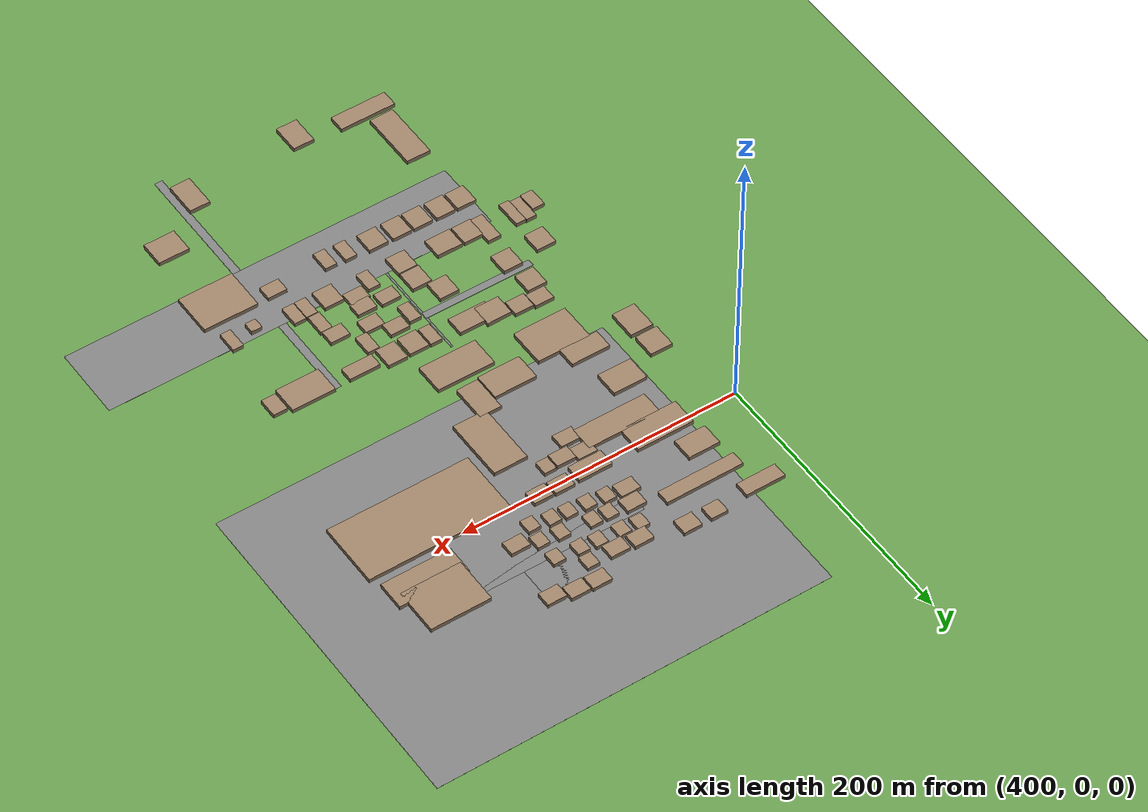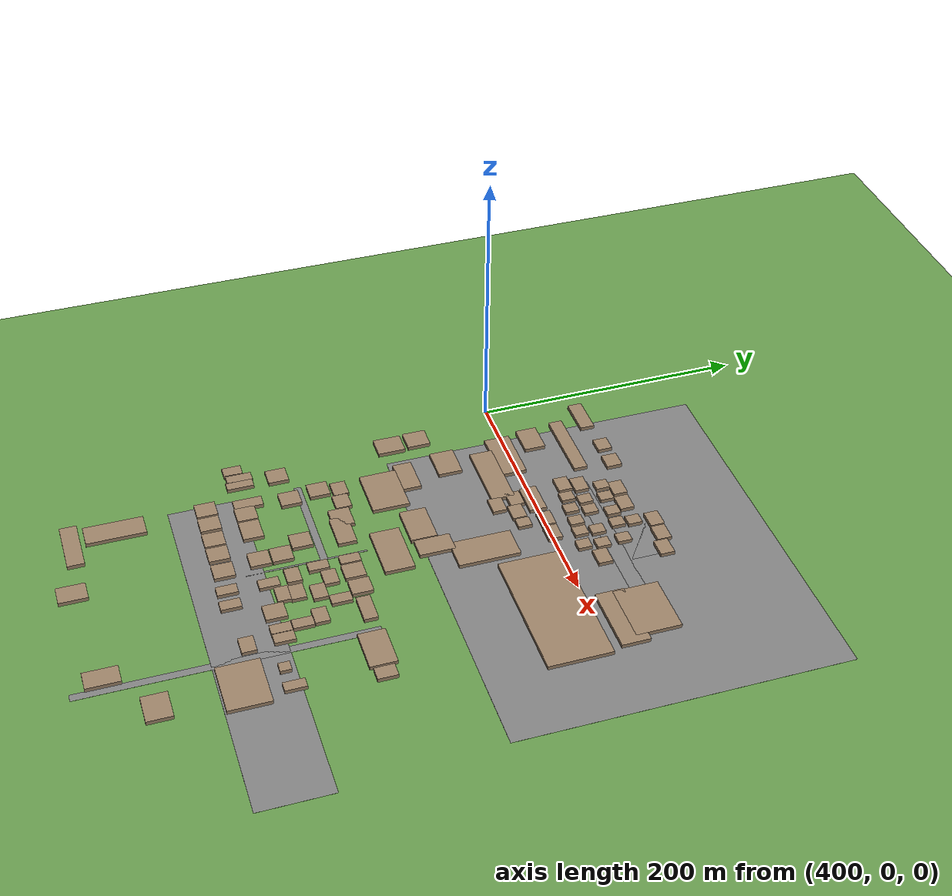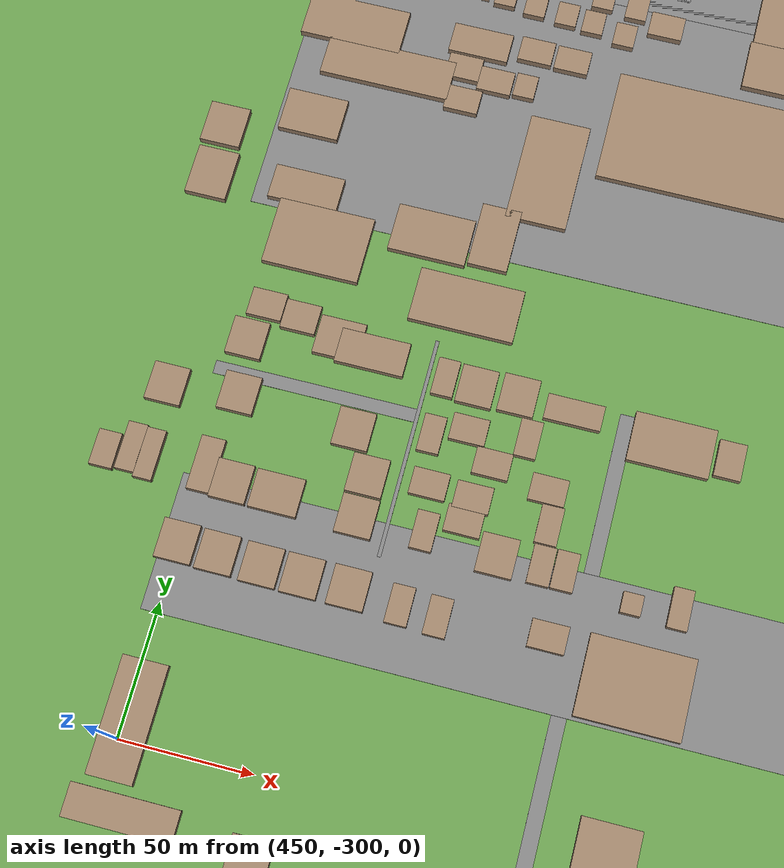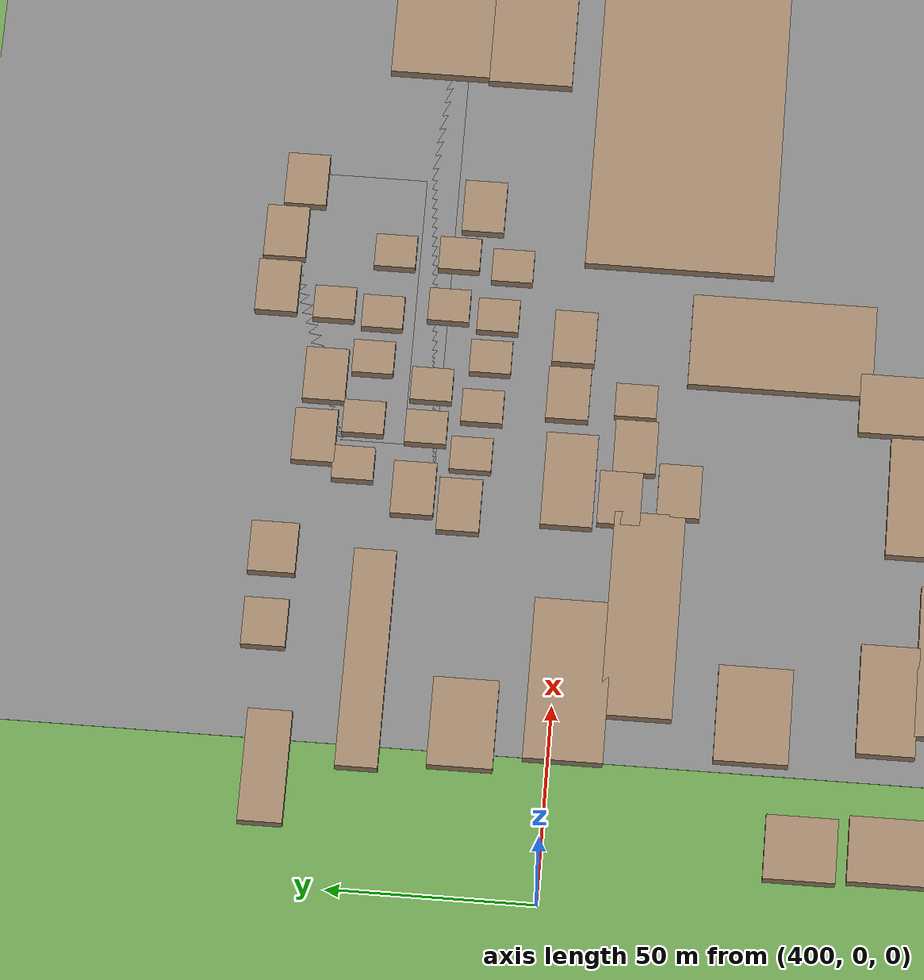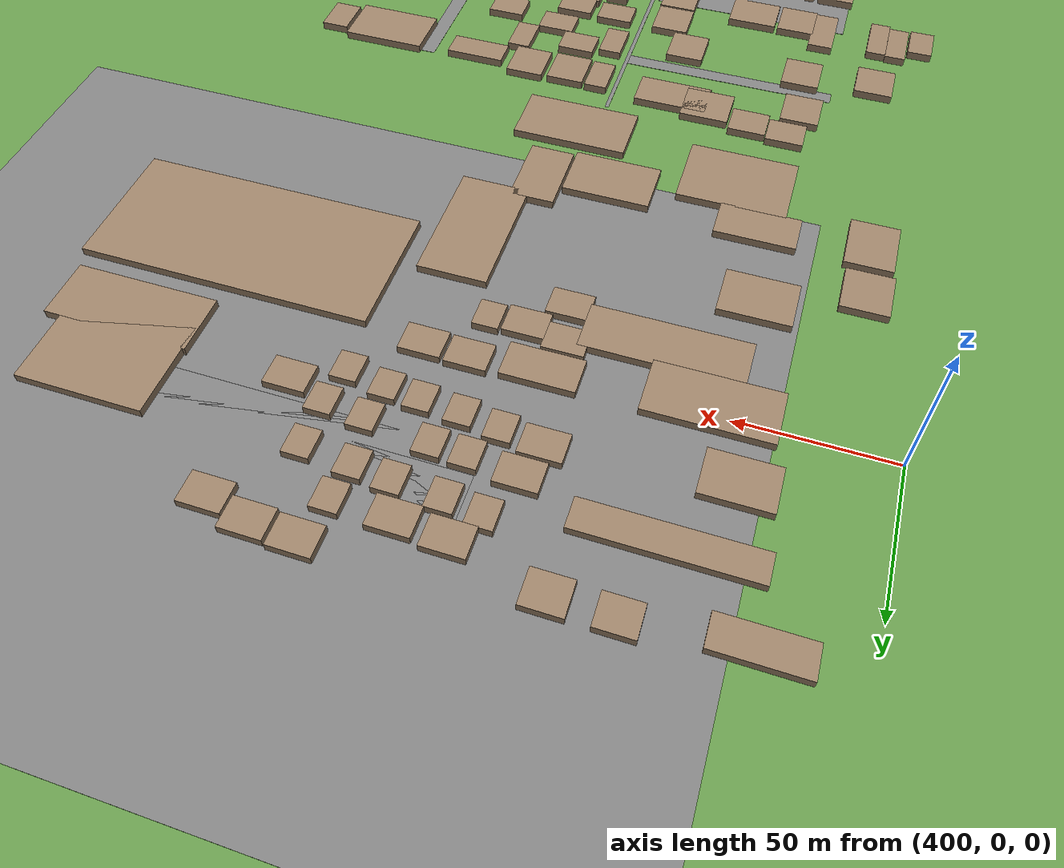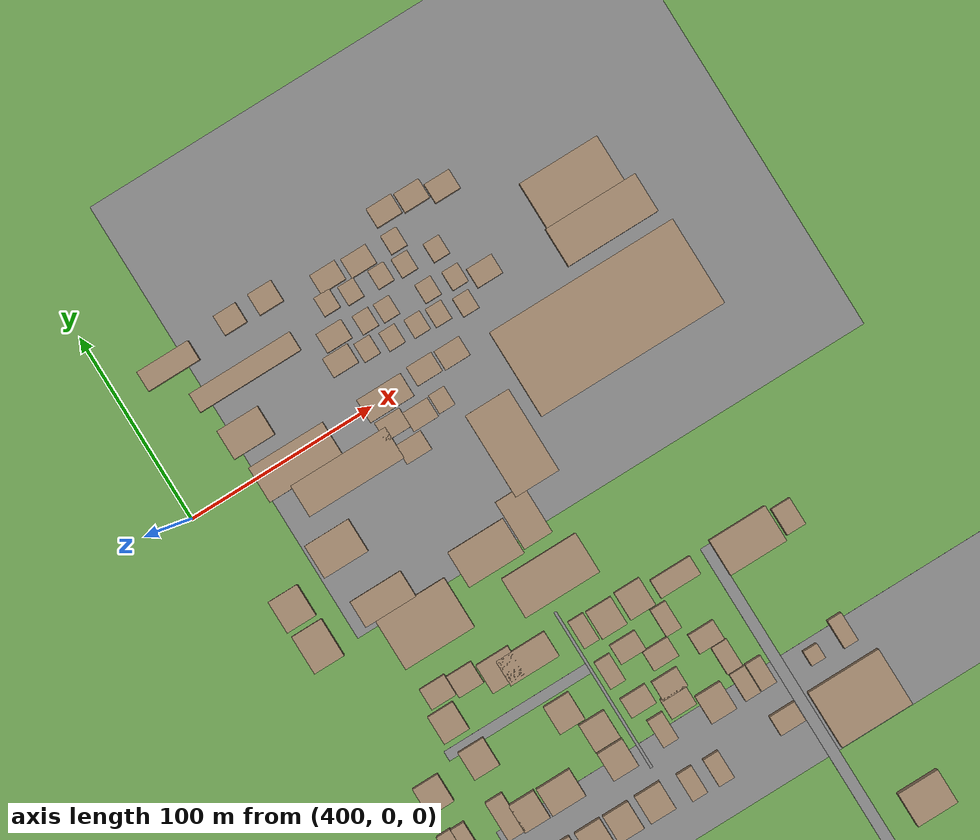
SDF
<sdf version="1.9">
 <world name="kimje_farmland">
  <model name="ground_plane">
   <static>true</static>
   <link name="link">
    <collision name="collision">
     <geometry><plane><normal>0 0 1</normal><size>2000 2000</size></plane></geometry>
    </collision>
    <visual name="visual">
     <geometry><plane><normal>0 0 1</normal><size>2000 2000</size></plane></geometry>
     <material><ambient>0.4 0.6 0.3 1</ambient><diffuse>0.4 0.6 0.3 1</diffuse></material>
    </visual>
   </link>
  </model>
  <model name="osm_30">
   <static>true</static>
   <pose>576.98 30.36 0.040 0 0 0</pose>
   <link name="link">
    <collision name="collision"><geometry><box><size>281.01 239.29 0.080</size></box></geometry></collision>
    <visual name="visual">
     <geometry><box><size>281.01 239.29 0.080</size></box></geometry>
     <material><ambient>0.5 0.5 0.5 1</ambient><diffuse>0.5 0.5 0.5 1</diffuse></material>
    </visual>
   </link>
  </model>
  <model name="osm_32">
   <static>true</static>
   <pose>550.19 56.67 0.040 0 0 0</pose>
   <link name="link">
    <collision name="collision"><geometry><box><size>70.86 31.63 0.080</size></box></geometry></collision>
    <visual name="visual">
     <geometry><box><size>70.86 31.63 0.080</size></box></geometry>
     <material><ambient>0.5 0.5 0.5 1</ambient><diffuse>0.5 0.5 0.5 1</diffuse></material>
    </visual>
   </link>
  </model>
  <model name="osm_51">
   <static>true</static>
   <pose>598.61 -242.30 0.040 0 0 0</pose>
   <link name="link">
    <collision name="collision"><geometry><box><size>5.69 207.16 0.080</size></box></geometry></collision>
    <visual name="visual">
     <geometry><box><size>5.69 207.16 0.080</size></box></geometry>
     <material><ambient>0.5 0.5 0.5 1</ambient><diffuse>0.5 0.5 0.5 1</diffuse></material>
    </visual>
   </link>
  </model>
  <model name="osm_88">
   <static>true</static>
   <pose>522.05 -170.82 0.040 0 0 0</pose>
   <link name="link">
    <collision name="collision"><geometry><box><size>1.39 86.46 0.080</size></box></geometry></collision>
    <visual name="visual">
     <geometry><box><size>1.39 86.46 0.080</size></box></geometry>
     <material><ambient>0.5 0.5 0.5 1</ambient><diffuse>0.5 0.5 0.5 1</diffuse></material>
    </visual>
   </link>
  </model>
  <model name="osm_89">
   <static>true</static>
   <pose>482.59 -158.55 0.040 0 0 0</pose>
   <link name="link">
    <collision name="collision"><geometry><box><size>79.70 5.27 0.080</size></box></geometry></collision>
    <visual name="visual">
     <geometry><box><size>79.70 5.27 0.080</size></box></geometry>
     <material><ambient>0.5 0.5 0.5 1</ambient><diffuse>0.5 0.5 0.5 1</diffuse></material>
    </visual>
   </link>
  </model>
  <model name="osm_118">
   <static>true</static>
   <pose>583.56 -227.54 0.040 0 0 0</pose>
   <link name="link">
    <collision name="collision"><geometry><box><size>279.80 52.63 0.080</size></box></geometry></collision>
    <visual name="visual">
     <geometry><box><size>279.80 52.63 0.080</size></box></geometry>
     <material><ambient>0.5 0.5 0.5 1</ambient><diffuse>0.5 0.5 0.5 1</diffuse></material>
    </visual>
   </link>
  </model>
  <model name="osm_128">
   <static>true</static>
   <pose>615.73 -22.93 1.500 0 0 0</pose>
   <link name="link">
    <collision name="collision"><geometry><box><size>101.24 46.49 3.000</size></box></geometry></collision>
    <visual name="visual">
     <geometry><box><size>101.24 46.49 3.000</size></box></geometry>
     <material><ambient>0.6 0.5 0.4 1</ambient><diffuse>0.6 0.5 0.4 1</diffuse></material>
    </visual>
   </link>
  </model>
  <model name="osm_132">
   <static>true</static>
   <pose>557.17 38.74 0.040 0 0 0</pose>
   <link name="link">
    <collision name="collision"><geometry><box><size>117.05 11.84 0.080</size></box></geometry></collision>
    <visual name="visual">
     <geometry><box><size>117.05 11.84 0.080</size></box></geometry>
     <material><ambient>0.5 0.5 0.5 1</ambient><diffuse>0.5 0.5 0.5 1</diffuse></material>
    </visual>
   </link>
  </model>
  <model name="osm_135">
   <static>true</static>
   <pose>546.81 -49.35 1.500 0 0 0</pose>
   <link name="link">
    <collision name="collision"><geometry><box><size>24.00 44.96 3.000</size></box></geometry></collision>
    <visual name="visual">
     <geometry><box><size>24.00 44.96 3.000</size></box></geometry>
     <material><ambient>0.6 0.5 0.4 1</ambient><diffuse>0.6 0.5 0.4 1</diffuse></material>
    </visual>
   </link>
  </model>
  <model name="osm_136">
   <static>true</static>
   <pose>637.83 17.27 1.500 0 0 0</pose>
   <link name="link">
    <collision name="collision"><geometry><box><size>49.55 20.71 3.000</size></box></geometry></collision>
    <visual name="visual">
     <geometry><box><size>49.55 20.71 3.000</size></box></geometry>
     <material><ambient>0.6 0.5 0.4 1</ambient><diffuse>0.6 0.5 0.4 1</diffuse></material>
    </visual>
   </link>
  </model>
  <model name="osm_137">
   <static>true</static>
   <pose>635.31 35.71 1.500 0 0 0</pose>
   <link name="link">
    <collision name="collision"><geometry><box><size>42.85 32.95 3.000</size></box></geometry></collision>
    <visual name="visual">
     <geometry><box><size>42.85 32.95 3.000</size></box></geometry>
     <material><ambient>0.6 0.5 0.4 1</ambient><diffuse>0.6 0.5 0.4 1</diffuse></material>
    </visual>
   </link>
  </model>
  <model name="osm_1175">
   <static>true</static>
   <pose>518.58 35.65 1.500 0 0 0</pose>
   <link name="link">
    <collision name="collision"><geometry><box><size>8.66 10.17 3.000</size></box></geometry></collision>
    <visual name="visual">
     <geometry><box><size>8.66 10.17 3.000</size></box></geometry>
     <material><ambient>0.6 0.5 0.4 1</ambient><diffuse>0.6 0.5 0.4 1</diffuse></material>
    </visual>
   </link>
  </model>
  <model name="osm_1176">
   <static>true</static>
   <pose>512.36 24.22 1.500 0 0 0</pose>
   <link name="link">
    <collision name="collision"><geometry><box><size>8.66 10.17 3.000</size></box></geometry></collision>
    <visual name="visual">
     <geometry><box><size>8.66 10.17 3.000</size></box></geometry>
     <material><ambient>0.6 0.5 0.4 1</ambient><diffuse>0.6 0.5 0.4 1</diffuse></material>
    </visual>
   </link>
  </model>
  <model name="osm_1177">
   <static>true</static>
   <pose>525.08 22.44 1.500 0 0 0</pose>
   <link name="link">
    <collision name="collision"><geometry><box><size>8.66 10.17 3.000</size></box></geometry></collision>
    <visual name="visual">
     <geometry><box><size>8.66 10.17 3.000</size></box></geometry>
     <material><ambient>0.6 0.5 0.4 1</ambient><diffuse>0.6 0.5 0.4 1</diffuse></material>
    </visual>
   </link>
  </model>
  <model name="osm_1178">
   <static>true</static>
   <pose>529.92 35.16 1.500 0 0 0</pose>
   <link name="link">
    <collision name="collision"><geometry><box><size>8.66 10.17 3.000</size></box></geometry></collision>
    <visual name="visual">
     <geometry><box><size>8.66 10.17 3.000</size></box></geometry>
     <material><ambient>0.6 0.5 0.4 1</ambient><diffuse>0.6 0.5 0.4 1</diffuse></material>
    </visual>
   </link>
  </model>
  <model name="osm_1179">
   <static>true</static>
   <pose>551.30 32.61 1.500 0 0 0</pose>
   <link name="link">
    <collision name="collision"><geometry><box><size>8.66 10.17 3.000</size></box></geometry></collision>
    <visual name="visual">
     <geometry><box><size>8.66 10.17 3.000</size></box></geometry>
     <material><ambient>0.6 0.5 0.4 1</ambient><diffuse>0.6 0.5 0.4 1</diffuse></material>
    </visual>
   </link>
  </model>
  <model name="osm_1180">
   <static>true</static>
   <pose>549.52 20.40 1.500 0 0 0</pose>
   <link name="link">
    <collision name="collision"><geometry><box><size>8.66 10.17 3.000</size></box></geometry></collision>
    <visual name="visual">
     <geometry><box><size>8.66 10.17 3.000</size></box></geometry>
     <material><ambient>0.6 0.5 0.4 1</ambient><diffuse>0.6 0.5 0.4 1</diffuse></material>
    </visual>
   </link>
  </model>
  <model name="osm_1181">
   <static>true</static>
   <pose>563.01 17.85 1.500 0 0 0</pose>
   <link name="link">
    <collision name="collision"><geometry><box><size>8.66 10.17 3.000</size></box></geometry></collision>
    <visual name="visual">
     <geometry><box><size>8.66 10.17 3.000</size></box></geometry>
     <material><ambient>0.6 0.5 0.4 1</ambient><diffuse>0.6 0.5 0.4 1</diffuse></material>
    </visual>
   </link>
  </model>
  <model name="osm_1182">
   <static>true</static>
   <pose>565.30 31.08 1.500 0 0 0</pose>
   <link name="link">
    <collision name="collision"><geometry><box><size>8.66 10.17 3.000</size></box></geometry></collision>
    <visual name="visual">
     <geometry><box><size>8.66 10.17 3.000</size></box></geometry>
     <material><ambient>0.6 0.5 0.4 1</ambient><diffuse>0.6 0.5 0.4 1</diffuse></material>
    </visual>
   </link>
  </model>
  <model name="osm_1183">
   <static>true</static>
   <pose>548.25 48.65 1.500 0 0 0</pose>
   <link name="link">
    <collision name="collision"><geometry><box><size>8.66 10.17 3.000</size></box></geometry></collision>
    <visual name="visual">
     <geometry><box><size>8.66 10.17 3.000</size></box></geometry>
     <material><ambient>0.6 0.5 0.4 1</ambient><diffuse>0.6 0.5 0.4 1</diffuse></material>
    </visual>
   </link>
  </model>
  <model name="osm_1184">
   <static>true</static>
   <pose>536.03 49.92 1.500 0 0 0</pose>
   <link name="link">
    <collision name="collision"><geometry><box><size>8.66 10.17 3.000</size></box></geometry></collision>
    <visual name="visual">
     <geometry><box><size>8.66 10.17 3.000</size></box></geometry>
     <material><ambient>0.6 0.5 0.4 1</ambient><diffuse>0.6 0.5 0.4 1</diffuse></material>
    </visual>
   </link>
  </model>
  <model name="osm_1185">
   <static>true</static>
   <pose>520.00 50.94 1.500 0 0 0</pose>
   <link name="link">
    <collision name="collision"><geometry><box><size>8.66 10.17 3.000</size></box></geometry></collision>
    <visual name="visual">
     <geometry><box><size>8.66 10.17 3.000</size></box></geometry>
     <material><ambient>0.6 0.5 0.4 1</ambient><diffuse>0.6 0.5 0.4 1</diffuse></material>
    </visual>
   </link>
  </model>
  <model name="osm_1186">
   <static>true</static>
   <pose>507.78 52.47 1.500 0 0 0</pose>
   <link name="link">
    <collision name="collision"><geometry><box><size>8.66 10.17 3.000</size></box></geometry></collision>
    <visual name="visual">
     <geometry><box><size>8.66 10.17 3.000</size></box></geometry>
     <material><ambient>0.6 0.5 0.4 1</ambient><diffuse>0.6 0.5 0.4 1</diffuse></material>
    </visual>
   </link>
  </model>
  <model name="osm_1187">
   <static>true</static>
   <pose>549.78 60.62 1.500 0 0 0</pose>
   <link name="link">
    <collision name="collision"><geometry><box><size>8.66 10.17 3.000</size></box></geometry></collision>
    <visual name="visual">
     <geometry><box><size>8.66 10.17 3.000</size></box></geometry>
     <material><ambient>0.6 0.5 0.4 1</ambient><diffuse>0.6 0.5 0.4 1</diffuse></material>
    </visual>
   </link>
  </model>
  <model name="osm_1188">
   <static>true</static>
   <pose>564.79 46.87 1.500 0 0 0</pose>
   <link name="link">
    <collision name="collision"><geometry><box><size>8.66 10.17 3.000</size></box></geometry></collision>
    <visual name="visual">
     <geometry><box><size>8.66 10.17 3.000</size></box></geometry>
     <material><ambient>0.6 0.5 0.4 1</ambient><diffuse>0.6 0.5 0.4 1</diffuse></material>
    </visual>
   </link>
  </model>
  <model name="osm_1189">
   <static>true</static>
   <pose>529.42 -14.73 1.500 0 0 0</pose>
   <link name="link">
    <collision name="collision"><geometry><box><size>8.66 10.17 3.000</size></box></geometry></collision>
    <visual name="visual">
     <geometry><box><size>8.66 10.17 3.000</size></box></geometry>
     <material><ambient>0.6 0.5 0.4 1</ambient><diffuse>0.6 0.5 0.4 1</diffuse></material>
    </visual>
   </link>
  </model>
  <model name="osm_1190">
   <static>true</static>
   <pose>538.32 21.41 1.500 0 0 0</pose>
   <link name="link">
    <collision name="collision"><geometry><box><size>8.66 10.17 3.000</size></box></geometry></collision>
    <visual name="visual">
     <geometry><box><size>8.66 10.17 3.000</size></box></geometry>
     <material><ambient>0.6 0.5 0.4 1</ambient><diffuse>0.6 0.5 0.4 1</diffuse></material>
    </visual>
   </link>
  </model>
  <model name="osm_1191">
   <static>true</static>
   <pose>502.32 37.40 1.500 0 0 0</pose>
   <link name="link">
    <collision name="collision"><geometry><box><size>13.76 10.42 3.000</size></box></geometry></collision>
    <visual name="visual">
     <geometry><box><size>13.76 10.42 3.000</size></box></geometry>
     <material><ambient>0.6 0.5 0.4 1</ambient><diffuse>0.6 0.5 0.4 1</diffuse></material>
    </visual>
   </link>
  </model>
  <model name="osm_1192">
   <static>true</static>
   <pose>498.82 26.02 1.500 0 0 0</pose>
   <link name="link">
    <collision name="collision"><geometry><box><size>13.76 10.42 3.000</size></box></geometry></collision>
    <visual name="visual">
     <geometry><box><size>13.76 10.42 3.000</size></box></geometry>
     <material><ambient>0.6 0.5 0.4 1</ambient><diffuse>0.6 0.5 0.4 1</diffuse></material>
    </visual>
   </link>
  </model>
  <model name="osm_1193">
   <static>true</static>
   <pose>553.29 74.89 1.500 0 0 0</pose>
   <link name="link">
    <collision name="collision"><geometry><box><size>13.75 10.42 3.000</size></box></geometry></collision>
    <visual name="visual">
     <geometry><box><size>13.75 10.42 3.000</size></box></geometry>
     <material><ambient>0.6 0.5 0.4 1</ambient><diffuse>0.6 0.5 0.4 1</diffuse></material>
    </visual>
   </link>
  </model>
  <model name="osm_1197">
   <static>true</static>
   <pose>568.06 74.13 1.500 0 0 0</pose>
   <link name="link">
    <collision name="collision"><geometry><box><size>13.76 10.41 3.000</size></box></geometry></collision>
    <visual name="visual">
     <geometry><box><size>13.76 10.41 3.000</size></box></geometry>
     <material><ambient>0.6 0.5 0.4 1</ambient><diffuse>0.6 0.5 0.4 1</diffuse></material>
    </visual>
   </link>
  </model>
  <model name="osm_1200">
   <static>true</static>
   <pose>514.35 62.42 1.500 0 0 0</pose>
   <link name="link">
    <collision name="collision"><geometry><box><size>13.76 10.42 3.000</size></box></geometry></collision>
    <visual name="visual">
     <geometry><box><size>13.76 10.42 3.000</size></box></geometry>
     <material><ambient>0.6 0.5 0.4 1</ambient><diffuse>0.6 0.5 0.4 1</diffuse></material>
    </visual>
   </link>
  </model>
  <model name="osm_1201">
   <static>true</static>
   <pose>530.64 61.15 1.500 0 0 0</pose>
   <link name="link">
    <collision name="collision"><geometry><box><size>13.76 10.42 3.000</size></box></geometry></collision>
    <visual name="visual">
     <geometry><box><size>13.76 10.42 3.000</size></box></geometry>
     <material><ambient>0.6 0.5 0.4 1</ambient><diffuse>0.6 0.5 0.4 1</diffuse></material>
    </visual>
   </link>
  </model>
  <model name="osm_1202">
   <static>true</static>
   <pose>530.13 1.84 1.500 0 0 0</pose>
   <link name="link">
    <collision name="collision"><geometry><box><size>13.76 10.42 3.000</size></box></geometry></collision>
    <visual name="visual">
     <geometry><box><size>13.76 10.42 3.000</size></box></geometry>
     <material><ambient>0.6 0.5 0.4 1</ambient><diffuse>0.6 0.5 0.4 1</diffuse></material>
    </visual>
   </link>
  </model>
  <model name="osm_1203">
   <static>true</static>
   <pose>545.15 1.33 1.500 0 0 0</pose>
   <link name="link">
    <collision name="collision"><geometry><box><size>13.76 10.42 3.000</size></box></geometry></collision>
    <visual name="visual">
     <geometry><box><size>13.76 10.42 3.000</size></box></geometry>
     <material><ambient>0.6 0.5 0.4 1</ambient><diffuse>0.6 0.5 0.4 1</diffuse></material>
    </visual>
   </link>
  </model>
  <model name="osm_1204">
   <static>true</static>
   <pose>582.57 70.31 1.500 0 0 0</pose>
   <link name="link">
    <collision name="collision"><geometry><box><size>13.76 10.41 3.000</size></box></geometry></collision>
    <visual name="visual">
     <geometry><box><size>13.76 10.41 3.000</size></box></geometry>
     <material><ambient>0.6 0.5 0.4 1</ambient><diffuse>0.6 0.5 0.4 1</diffuse></material>
    </visual>
   </link>
  </model>
  <model name="osm_1210">
   <static>true</static>
   <pose>578.49 26.02 1.500 0 0 0</pose>
   <link name="link">
    <collision name="collision"><geometry><box><size>13.76 10.42 3.000</size></box></geometry></collision>
    <visual name="visual">
     <geometry><box><size>13.76 10.42 3.000</size></box></geometry>
     <material><ambient>0.6 0.5 0.4 1</ambient><diffuse>0.6 0.5 0.4 1</diffuse></material>
    </visual>
   </link>
  </model>
  <model name="osm_1211">
   <static>true</static>
   <pose>588.42 -227.51 1.500 0 0 0</pose>
   <link name="link">
    <collision name="collision"><geometry><box><size>13.76 10.42 3.000</size></box></geometry></collision>
    <visual name="visual">
     <geometry><box><size>13.76 10.42 3.000</size></box></geometry>
     <material><ambient>0.6 0.5 0.4 1</ambient><diffuse>0.6 0.5 0.4 1</diffuse></material>
    </visual>
   </link>
  </model>
  <model name="osm_1212">
   <static>true</static>
   <pose>576.21 -174.82 1.500 0 0 0</pose>
   <link name="link">
    <collision name="collision"><geometry><box><size>13.76 10.41 3.000</size></box></geometry></collision>
    <visual name="visual">
     <geometry><box><size>13.76 10.41 3.000</size></box></geometry>
     <material><ambient>0.6 0.5 0.4 1</ambient><diffuse>0.6 0.5 0.4 1</diffuse></material>
    </visual>
   </link>
  </model>
  <model name="osm_1213">
   <static>true</static>
   <pose>549.99 -184.49 1.500 0 0 0</pose>
   <link name="link">
    <collision name="collision"><geometry><box><size>13.76 10.42 3.000</size></box></geometry></collision>
    <visual name="visual">
     <geometry><box><size>13.76 10.42 3.000</size></box></geometry>
     <material><ambient>0.6 0.5 0.4 1</ambient><diffuse>0.6 0.5 0.4 1</diffuse></material>
    </visual>
   </link>
  </model>
  <model name="osm_1214">
   <static>true</static>
   <pose>553.81 -170.23 1.500 0 0 0</pose>
   <link name="link">
    <collision name="collision"><geometry><box><size>13.76 10.42 3.000</size></box></geometry></collision>
    <visual name="visual">
     <geometry><box><size>13.76 10.42 3.000</size></box></geometry>
     <material><ambient>0.6 0.5 0.4 1</ambient><diffuse>0.6 0.5 0.4 1</diffuse></material>
    </visual>
   </link>
  </model>
  <model name="osm_1215">
   <static>true</static>
   <pose>542.35 -159.54 1.500 0 0 0</pose>
   <link name="link">
    <collision name="collision"><geometry><box><size>13.76 10.41 3.000</size></box></geometry></collision>
    <visual name="visual">
     <geometry><box><size>13.76 10.41 3.000</size></box></geometry>
     <material><ambient>0.6 0.5 0.4 1</ambient><diffuse>0.6 0.5 0.4 1</diffuse></material>
    </visual>
   </link>
  </model>
  <model name="osm_1216">
   <static>true</static>
   <pose>548.97 -193.90 1.500 0 0 0</pose>
   <link name="link">
    <collision name="collision"><geometry><box><size>13.76 10.42 3.000</size></box></geometry></collision>
    <visual name="visual">
     <geometry><box><size>13.76 10.42 3.000</size></box></geometry>
     <material><ambient>0.6 0.5 0.4 1</ambient><diffuse>0.6 0.5 0.4 1</diffuse></material>
    </visual>
   </link>
  </model>
  <model name="osm_1217">
   <static>true</static>
   <pose>533.19 -183.47 1.500 0 0 0</pose>
   <link name="link">
    <collision name="collision"><geometry><box><size>13.76 10.42 3.000</size></box></geometry></collision>
    <visual name="visual">
     <geometry><box><size>13.76 10.42 3.000</size></box></geometry>
     <material><ambient>0.6 0.5 0.4 1</ambient><diffuse>0.6 0.5 0.4 1</diffuse></material>
    </visual>
   </link>
  </model>
  <model name="osm_1218">
   <static>true</static>
   <pose>507.45 0.01 1.500 0 0 0</pose>
   <link name="link">
    <collision name="collision"><geometry><box><size>24.20 12.58 3.000</size></box></geometry></collision>
    <visual name="visual">
     <geometry><box><size>24.20 12.58 3.000</size></box></geometry>
     <material><ambient>0.6 0.5 0.4 1</ambient><diffuse>0.6 0.5 0.4 1</diffuse></material>
    </visual>
   </link>
  </model>
  <model name="osm_1219">
   <static>true</static>
   <pose>506.51 -26.70 1.500 0 0 0</pose>
   <link name="link">
    <collision name="collision"><geometry><box><size>13.76 10.42 3.000</size></box></geometry></collision>
    <visual name="visual">
     <geometry><box><size>13.76 10.42 3.000</size></box></geometry>
     <material><ambient>0.6 0.5 0.4 1</ambient><diffuse>0.6 0.5 0.4 1</diffuse></material>
    </visual>
   </link>
  </model>
  <model name="osm_1220">
   <static>true</static>
   <pose>503.63 -12.48 1.500 0 0 0</pose>
   <link name="link">
    <collision name="collision"><geometry><box><size>13.76 10.42 3.000</size></box></geometry></collision>
    <visual name="visual">
     <geometry><box><size>13.76 10.42 3.000</size></box></geometry>
     <material><ambient>0.6 0.5 0.4 1</ambient><diffuse>0.6 0.5 0.4 1</diffuse></material>
    </visual>
   </link>
  </model>
  <model name="osm_1221">
   <static>true</static>
   <pose>517.31 -15.36 1.500 0 0 0</pose>
   <link name="link">
    <collision name="collision"><geometry><box><size>13.76 10.41 3.000</size></box></geometry></collision>
    <visual name="visual">
     <geometry><box><size>13.76 10.41 3.000</size></box></geometry>
     <material><ambient>0.6 0.5 0.4 1</ambient><diffuse>0.6 0.5 0.4 1</diffuse></material>
    </visual>
   </link>
  </model>
  <model name="osm_1244">
   <static>true</static>
   <pose>484.45 69.73 1.500 0 0 0</pose>
   <link name="link">
    <collision name="collision"><geometry><box><size>13.01 11.50 3.000</size></box></geometry></collision>
    <visual name="visual">
     <geometry><box><size>13.01 11.50 3.000</size></box></geometry>
     <material><ambient>0.6 0.5 0.4 1</ambient><diffuse>0.6 0.5 0.4 1</diffuse></material>
    </visual>
   </link>
  </model>
  <model name="osm_1279">
   <static>true</static>
   <pose>465.09 69.98 1.500 0 0 0</pose>
   <link name="link">
    <collision name="collision"><geometry><box><size>12.17 10.72 3.000</size></box></geometry></collision>
    <visual name="visual">
     <geometry><box><size>12.17 10.72 3.000</size></box></geometry>
     <material><ambient>0.6 0.5 0.4 1</ambient><diffuse>0.6 0.5 0.4 1</diffuse></material>
    </visual>
   </link>
  </model>
  <model name="osm_1281">
   <static>true</static>
   <pose>588.96 -202.83 1.500 0 0 0</pose>
   <link name="link">
    <collision name="collision"><geometry><box><size>8.41 14.69 3.000</size></box></geometry></collision>
    <visual name="visual">
     <geometry><box><size>8.41 14.69 3.000</size></box></geometry>
     <material><ambient>0.6 0.5 0.4 1</ambient><diffuse>0.6 0.5 0.4 1</diffuse></material>
    </visual>
   </link>
  </model>
  <model name="osm_1282">
   <static>true</static>
   <pose>535.88 -201.01 1.500 0 0 0</pose>
   <link name="link">
    <collision name="collision"><geometry><box><size>8.42 14.69 3.000</size></box></geometry></collision>
    <visual name="visual">
     <geometry><box><size>8.42 14.69 3.000</size></box></geometry>
     <material><ambient>0.6 0.5 0.4 1</ambient><diffuse>0.6 0.5 0.4 1</diffuse></material>
    </visual>
   </link>
  </model>
  <model name="osm_1283">
   <static>true</static>
   <pose>579.55 -187.74 1.500 0 0 0</pose>
   <link name="link">
    <collision name="collision"><geometry><box><size>8.41 14.69 3.000</size></box></geometry></collision>
    <visual name="visual">
     <geometry><box><size>8.41 14.69 3.000</size></box></geometry>
     <material><ambient>0.6 0.5 0.4 1</ambient><diffuse>0.6 0.5 0.4 1</diffuse></material>
    </visual>
   </link>
  </model>
  <model name="osm_1284">
   <static>true</static>
   <pose>564.56 -157.56 1.500 0 0 0</pose>
   <link name="link">
    <collision name="collision"><geometry><box><size>8.42 14.69 3.000</size></box></geometry></collision>
    <visual name="visual">
     <geometry><box><size>8.42 14.69 3.000</size></box></geometry>
     <material><ambient>0.6 0.5 0.4 1</ambient><diffuse>0.6 0.5 0.4 1</diffuse></material>
    </visual>
   </link>
  </model>
  <model name="osm_1285">
   <static>true</static>
   <pose>580.19 -202.94 1.500 0 0 0</pose>
   <link name="link">
    <collision name="collision"><geometry><box><size>8.41 14.69 3.000</size></box></geometry></collision>
    <visual name="visual">
     <geometry><box><size>8.41 14.69 3.000</size></box></geometry>
     <material><ambient>0.6 0.5 0.4 1</ambient><diffuse>0.6 0.5 0.4 1</diffuse></material>
    </visual>
   </link>
  </model>
  <model name="osm_1286">
   <static>true</static>
   <pose>534.17 -229.70 1.500 0 0 0</pose>
   <link name="link">
    <collision name="collision"><geometry><box><size>8.41 14.69 3.000</size></box></geometry></collision>
    <visual name="visual">
     <geometry><box><size>8.41 14.69 3.000</size></box></geometry>
     <material><ambient>0.6 0.5 0.4 1</ambient><diffuse>0.6 0.5 0.4 1</diffuse></material>
    </visual>
   </link>
  </model>
  <model name="osm_1287">
   <static>true</static>
   <pose>548.51 -230.33 1.500 0 0 0</pose>
   <link name="link">
    <collision name="collision"><geometry><box><size>8.41 14.69 3.000</size></box></geometry></collision>
    <visual name="visual">
     <geometry><box><size>8.41 14.69 3.000</size></box></geometry>
     <material><ambient>0.6 0.5 0.4 1</ambient><diffuse>0.6 0.5 0.4 1</diffuse></material>
    </visual>
   </link>
  </model>
  <model name="osm_1288">
   <static>true</static>
   <pose>529.24 -164.62 1.500 0 0 0</pose>
   <link name="link">
    <collision name="collision"><geometry><box><size>8.42 14.69 3.000</size></box></geometry></collision>
    <visual name="visual">
     <geometry><box><size>8.42 14.69 3.000</size></box></geometry>
     <material><ambient>0.6 0.5 0.4 1</ambient><diffuse>0.6 0.5 0.4 1</diffuse></material>
    </visual>
   </link>
  </model>
  <model name="osm_1289">
   <static>true</static>
   <pose>528.82 -141.93 1.500 0 0 0</pose>
   <link name="link">
    <collision name="collision"><geometry><box><size>8.41 14.69 3.000</size></box></geometry></collision>
    <visual name="visual">
     <geometry><box><size>8.41 14.69 3.000</size></box></geometry>
     <material><ambient>0.6 0.5 0.4 1</ambient><diffuse>0.6 0.5 0.4 1</diffuse></material>
    </visual>
   </link>
  </model>
  <model name="osm_1290">
   <static>true</static>
   <pose>541.11 -142.46 1.500 0 0 0</pose>
   <link name="link">
    <collision name="collision"><geometry><box><size>13.88 15.02 3.000</size></box></geometry></collision>
    <visual name="visual">
     <geometry><box><size>13.88 15.02 3.000</size></box></geometry>
     <material><ambient>0.6 0.5 0.4 1</ambient><diffuse>0.6 0.5 0.4 1</diffuse></material>
    </visual>
   </link>
  </model>
  <model name="osm_1291">
   <static>true</static>
   <pose>557.17 -141.92 1.500 0 0 0</pose>
   <link name="link">
    <collision name="collision"><geometry><box><size>13.88 15.01 3.000</size></box></geometry></collision>
    <visual name="visual">
     <geometry><box><size>13.88 15.01 3.000</size></box></geometry>
     <material><ambient>0.6 0.5 0.4 1</ambient><diffuse>0.6 0.5 0.4 1</diffuse></material>
    </visual>
   </link>
  </model>
  <model name="osm_1292">
   <static>true</static>
   <pose>563.80 -203.36 1.500 0 0 0</pose>
   <link name="link">
    <collision name="collision"><geometry><box><size>13.88 15.01 3.000</size></box></geometry></collision>
    <visual name="visual">
     <geometry><box><size>13.88 15.01 3.000</size></box></geometry>
     <material><ambient>0.6 0.5 0.4 1</ambient><diffuse>0.6 0.5 0.4 1</diffuse></material>
    </visual>
   </link>
  </model>
  <model name="osm_1293">
   <static>true</static>
   <pose>500.66 -169.96 1.500 0 0 0</pose>
   <link name="link">
    <collision name="collision"><geometry><box><size>13.89 15.01 3.000</size></box></geometry></collision>
    <visual name="visual">
     <geometry><box><size>13.89 15.01 3.000</size></box></geometry>
     <material><ambient>0.6 0.5 0.4 1</ambient><diffuse>0.6 0.5 0.4 1</diffuse></material>
    </visual>
   </link>
  </model>
  <model name="osm_1294">
   <static>true</static>
   <pose>479.71 -200.81 1.500 0 0 0</pose>
   <link name="link">
    <collision name="collision"><geometry><box><size>18.37 14.77 3.000</size></box></geometry></collision>
    <visual name="visual">
     <geometry><box><size>18.37 14.77 3.000</size></box></geometry>
     <material><ambient>0.6 0.5 0.4 1</ambient><diffuse>0.6 0.5 0.4 1</diffuse></material>
    </visual>
   </link>
  </model>
  <model name="osm_1308">
   <static>true</static>
   <pose>428.10 -170.17 1.500 0 0 0</pose>
   <link name="link">
    <collision name="collision"><geometry><box><size>13.89 15.01 3.000</size></box></geometry></collision>
    <visual name="visual">
     <geometry><box><size>13.89 15.01 3.000</size></box></geometry>
     <material><ambient>0.6 0.5 0.4 1</ambient><diffuse>0.6 0.5 0.4 1</diffuse></material>
    </visual>
   </link>
  </model>
  <model name="osm_1309">
   <static>true</static>
   <pose>452.07 -145.14 1.500 0 0 0</pose>
   <link name="link">
    <collision name="collision"><geometry><box><size>13.89 15.02 3.000</size></box></geometry></collision>
    <visual name="visual">
     <geometry><box><size>13.89 15.02 3.000</size></box></geometry>
     <material><ambient>0.6 0.5 0.4 1</ambient><diffuse>0.6 0.5 0.4 1</diffuse></material>
    </visual>
   </link>
  </model>
  <model name="osm_1310">
   <static>true</static>
   <pose>449.72 -227.12 1.500 0 0 0</pose>
   <link name="link">
    <collision name="collision"><geometry><box><size>13.88 15.01 3.000</size></box></geometry></collision>
    <visual name="visual">
     <geometry><box><size>13.88 15.01 3.000</size></box></geometry>
     <material><ambient>0.6 0.5 0.4 1</ambient><diffuse>0.6 0.5 0.4 1</diffuse></material>
    </visual>
   </link>
  </model>
  <model name="osm_1311">
   <static>true</static>
   <pose>465.13 -227.54 1.500 0 0 0</pose>
   <link name="link">
    <collision name="collision"><geometry><box><size>13.88 15.02 3.000</size></box></geometry></collision>
    <visual name="visual">
     <geometry><box><size>13.88 15.02 3.000</size></box></geometry>
     <material><ambient>0.6 0.5 0.4 1</ambient><diffuse>0.6 0.5 0.4 1</diffuse></material>
    </visual>
   </link>
  </model>
  <model name="osm_1312">
   <static>true</static>
   <pose>481.82 -227.97 1.500 0 0 0</pose>
   <link name="link">
    <collision name="collision"><geometry><box><size>13.88 15.01 3.000</size></box></geometry></collision>
    <visual name="visual">
     <geometry><box><size>13.88 15.01 3.000</size></box></geometry>
     <material><ambient>0.6 0.5 0.4 1</ambient><diffuse>0.6 0.5 0.4 1</diffuse></material>
    </visual>
   </link>
  </model>
  <model name="osm_1313">
   <static>true</static>
   <pose>497.23 -228.18 1.500 0 0 0</pose>
   <link name="link">
    <collision name="collision"><geometry><box><size>13.88 15.01 3.000</size></box></geometry></collision>
    <visual name="visual">
     <geometry><box><size>13.88 15.01 3.000</size></box></geometry>
     <material><ambient>0.6 0.5 0.4 1</ambient><diffuse>0.6 0.5 0.4 1</diffuse></material>
    </visual>
   </link>
  </model>
  <model name="osm_1314">
   <static>true</static>
   <pose>514.79 -228.18 1.500 0 0 0</pose>
   <link name="link">
    <collision name="collision"><geometry><box><size>13.88 15.01 3.000</size></box></geometry></collision>
    <visual name="visual">
     <geometry><box><size>13.88 15.01 3.000</size></box></geometry>
     <material><ambient>0.6 0.5 0.4 1</ambient><diffuse>0.6 0.5 0.4 1</diffuse></material>
    </visual>
   </link>
  </model>
  <model name="osm_1315">
   <static>true</static>
   <pose>510.51 -201.86 1.500 0 0 0</pose>
   <link name="link">
    <collision name="collision"><geometry><box><size>13.88 15.01 3.000</size></box></geometry></collision>
    <visual name="visual">
     <geometry><box><size>13.88 15.01 3.000</size></box></geometry>
     <material><ambient>0.6 0.5 0.4 1</ambient><diffuse>0.6 0.5 0.4 1</diffuse></material>
    </visual>
   </link>
  </model>
  <model name="osm_1316">
   <static>true</static>
   <pose>510.29 -186.02 1.500 0 0 0</pose>
   <link name="link">
    <collision name="collision"><geometry><box><size>13.88 15.01 3.000</size></box></geometry></collision>
    <visual name="visual">
     <geometry><box><size>13.88 15.01 3.000</size></box></geometry>
     <material><ambient>0.6 0.5 0.4 1</ambient><diffuse>0.6 0.5 0.4 1</diffuse></material>
    </visual>
   </link>
  </model>
  <model name="osm_1317">
   <static>true</static>
   <pose>455.28 -166.97 1.500 0 0 0</pose>
   <link name="link">
    <collision name="collision"><geometry><box><size>13.89 15.01 3.000</size></box></geometry></collision>
    <visual name="visual">
     <geometry><box><size>13.89 15.01 3.000</size></box></geometry>
     <material><ambient>0.6 0.5 0.4 1</ambient><diffuse>0.6 0.5 0.4 1</diffuse></material>
    </visual>
   </link>
  </model>
  <model name="osm_1318">
   <static>true</static>
   <pose>462.34 -200.58 1.500 0 0 0</pose>
   <link name="link">
    <collision name="collision"><geometry><box><size>13.89 15.01 3.000</size></box></geometry></collision>
    <visual name="visual">
     <geometry><box><size>13.89 15.01 3.000</size></box></geometry>
     <material><ambient>0.6 0.5 0.4 1</ambient><diffuse>0.6 0.5 0.4 1</diffuse></material>
    </visual>
   </link>
  </model>
  <model name="osm_1319">
   <static>true</static>
   <pose>451.38 -196.73 1.500 0 0 0</pose>
   <link name="link">
    <collision name="collision"><geometry><box><size>9.28 21.11 3.000</size></box></geometry></collision>
    <visual name="visual">
     <geometry><box><size>9.28 21.11 3.000</size></box></geometry>
     <material><ambient>0.6 0.5 0.4 1</ambient><diffuse>0.6 0.5 0.4 1</diffuse></material>
    </visual>
   </link>
  </model>
  <model name="osm_1578">
   <static>true</static>
   <pose>632.26 -206.03 1.500 0 0 0</pose>
   <link name="link">
    <collision name="collision"><geometry><box><size>7.58 15.27 3.000</size></box></geometry></collision>
    <visual name="visual">
     <geometry><box><size>7.58 15.27 3.000</size></box></geometry>
     <material><ambient>0.6 0.5 0.4 1</ambient><diffuse>0.6 0.5 0.4 1</diffuse></material>
    </visual>
   </link>
  </model>
  <model name="osm_1580">
   <static>true</static>
   <pose>614.90 -208.58 1.500 0 0 0</pose>
   <link name="link">
    <collision name="collision"><geometry><box><size>7.62 7.93 3.000</size></box></geometry></collision>
    <visual name="visual">
     <geometry><box><size>7.62 7.93 3.000</size></box></geometry>
     <material><ambient>0.6 0.5 0.4 1</ambient><diffuse>0.6 0.5 0.4 1</diffuse></material>
    </visual>
   </link>
  </model>
  <model name="osm_1633">
   <static>true</static>
   <pose>638.81 -147.13 1.500 0 0 0</pose>
   <link name="link">
    <collision name="collision"><geometry><box><size>10.25 14.33 3.000</size></box></geometry></collision>
    <visual name="visual">
     <geometry><box><size>10.25 14.33 3.000</size></box></geometry>
     <material><ambient>0.6 0.5 0.4 1</ambient><diffuse>0.6 0.5 0.4 1</diffuse></material>
    </visual>
   </link>
  </model>
  <model name="osm_1634">
   <static>true</static>
   <pose>616.69 -146.69 1.500 0 0 0</pose>
   <link name="link">
    <collision name="collision"><geometry><box><size>31.00 19.35 3.000</size></box></geometry></collision>
    <visual name="visual">
     <geometry><box><size>31.00 19.35 3.000</size></box></geometry>
     <material><ambient>0.6 0.5 0.4 1</ambient><diffuse>0.6 0.5 0.4 1</diffuse></material>
    </visual>
   </link>
  </model>
  <model name="osm_1707">
   <static>true</static>
   <pose>624.65 -293.96 1.500 0 0 0</pose>
   <link name="link">
    <collision name="collision"><geometry><box><size>21.98 18.16 3.000</size></box></geometry></collision>
    <visual name="visual">
     <geometry><box><size>21.98 18.16 3.000</size></box></geometry>
     <material><ambient>0.6 0.5 0.4 1</ambient><diffuse>0.6 0.5 0.4 1</diffuse></material>
    </visual>
   </link>
  </model>
  <model name="osm_1753">
   <static>true</static>
   <pose>622.40 -237.38 1.500 0 0 0</pose>
   <link name="link">
    <collision name="collision"><geometry><box><size>39.02 30.36 3.000</size></box></geometry></collision>
    <visual name="visual">
     <geometry><box><size>39.02 30.36 3.000</size></box></geometry>
     <material><ambient>0.6 0.5 0.4 1</ambient><diffuse>0.6 0.5 0.4 1</diffuse></material>
    </visual>
   </link>
  </model>
  <model name="osm_1755">
   <static>true</static>
   <pose>578.75 -143.32 1.500 0 0 0</pose>
   <link name="link">
    <collision name="collision"><geometry><box><size>21.87 9.96 3.000</size></box></geometry></collision>
    <visual name="visual">
     <geometry><box><size>21.87 9.96 3.000</size></box></geometry>
     <material><ambient>0.6 0.5 0.4 1</ambient><diffuse>0.6 0.5 0.4 1</diffuse></material>
    </visual>
   </link>
  </model>
  <model name="osm_1756">
   <static>true</static>
   <pose>529.36 -111.66 1.500 0 0 0</pose>
   <link name="link">
    <collision name="collision"><geometry><box><size>41.03 21.53 3.000</size></box></geometry></collision>
    <visual name="visual">
     <geometry><box><size>41.03 21.53 3.000</size></box></geometry>
     <material><ambient>0.6 0.5 0.4 1</ambient><diffuse>0.6 0.5 0.4 1</diffuse></material>
    </visual>
   </link>
  </model>
  <model name="osm_1757">
   <static>true</static>
   <pose>509.20 -86.66 1.500 0 0 0</pose>
   <link name="link">
    <collision name="collision"><geometry><box><size>30.58 19.28 3.000</size></box></geometry></collision>
    <visual name="visual">
     <geometry><box><size>30.58 19.28 3.000</size></box></geometry>
     <material><ambient>0.6 0.5 0.4 1</ambient><diffuse>0.6 0.5 0.4 1</diffuse></material>
    </visual>
   </link>
  </model>
  <model name="osm_1758">
   <static>true</static>
   <pose>533.12 -81.82 1.500 0 0 0</pose>
   <link name="link">
    <collision name="collision"><geometry><box><size>15.55 25.94 3.000</size></box></geometry></collision>
    <visual name="visual">
     <geometry><box><size>15.55 25.94 3.000</size></box></geometry>
     <material><ambient>0.6 0.5 0.4 1</ambient><diffuse>0.6 0.5 0.4 1</diffuse></material>
    </visual>
   </link>
  </model>
  <model name="osm_1759">
   <static>true</static>
   <pose>473.98 -20.03 1.500 0 0 0</pose>
   <link name="link">
    <collision name="collision"><geometry><box><size>52.33 17.07 3.000</size></box></geometry></collision>
    <visual name="visual">
     <geometry><box><size>52.33 17.07 3.000</size></box></geometry>
     <material><ambient>0.6 0.5 0.4 1</ambient><diffuse>0.6 0.5 0.4 1</diffuse></material>
    </visual>
   </link>
  </model>
  <model name="osm_1760">
   <static>true</static>
   <pose>455.95 -3.46 1.500 0 0 0</pose>
   <link name="link">
    <collision name="collision"><geometry><box><size>40.90 19.07 3.000</size></box></geometry></collision>
    <visual name="visual">
     <geometry><box><size>40.90 19.07 3.000</size></box></geometry>
     <material><ambient>0.6 0.5 0.4 1</ambient><diffuse>0.6 0.5 0.4 1</diffuse></material>
    </visual>
   </link>
  </model>
  <model name="osm_1761">
   <static>true</static>
   <pose>443.20 20.76 1.500 0 0 0</pose>
   <link name="link">
    <collision name="collision"><geometry><box><size>22.40 15.74 3.000</size></box></geometry></collision>
    <visual name="visual">
     <geometry><box><size>22.40 15.74 3.000</size></box></geometry>
     <material><ambient>0.6 0.5 0.4 1</ambient><diffuse>0.6 0.5 0.4 1</diffuse></material>
    </visual>
   </link>
  </model>
  <model name="osm_1762">
   <static>true</static>
   <pose>457.90 45.16 1.500 0 0 0</pose>
   <link name="link">
    <collision name="collision"><geometry><box><size>55.57 10.23 3.000</size></box></geometry></collision>
    <visual name="visual">
     <geometry><box><size>55.57 10.23 3.000</size></box></geometry>
     <material><ambient>0.6 0.5 0.4 1</ambient><diffuse>0.6 0.5 0.4 1</diffuse></material>
    </visual>
   </link>
  </model>
  <model name="osm_1812">
   <static>true</static>
   <pose>419.00 -82.22 1.500 0 0 0</pose>
   <link name="link">
    <collision name="collision"><geometry><box><size>16.40 20.44 3.000</size></box></geometry></collision>
    <visual name="visual">
     <geometry><box><size>16.40 20.44 3.000</size></box></geometry>
     <material><ambient>0.6 0.5 0.4 1</ambient><diffuse>0.6 0.5 0.4 1</diffuse></material>
    </visual>
   </link>
  </model>
  <model name="osm_1813">
   <static>true</static>
   <pose>499.55 -139.11 1.500 0 0 0</pose>
   <link name="link">
    <collision name="collision"><geometry><box><size>26.76 13.56 3.000</size></box></geometry></collision>
    <visual name="visual">
     <geometry><box><size>26.76 13.56 3.000</size></box></geometry>
     <material><ambient>0.6 0.5 0.4 1</ambient><diffuse>0.6 0.5 0.4 1</diffuse></material>
    </visual>
   </link>
  </model>
  <model name="osm_1814">
   <static>true</static>
   <pose>506.24 -330.66 1.500 0 0 0</pose>
   <link name="link">
    <collision name="collision"><geometry><box><size>14.97 20.66 3.000</size></box></geometry></collision>
    <visual name="visual">
     <geometry><box><size>14.97 20.66 3.000</size></box></geometry>
     <material><ambient>0.6 0.5 0.4 1</ambient><diffuse>0.6 0.5 0.4 1</diffuse></material>
    </visual>
   </link>
  </model>
  <model name="osm_1816">
   <static>true</static>
   <pose>451.82 -292.75 1.500 0 0 0</pose>
   <link name="link">
    <collision name="collision"><geometry><box><size>17.25 43.14 3.000</size></box></geometry></collision>
    <visual name="visual">
     <geometry><box><size>17.25 43.14 3.000</size></box></geometry>
     <material><ambient>0.6 0.5 0.4 1</ambient><diffuse>0.6 0.5 0.4 1</diffuse></material>
    </visual>
   </link>
  </model>
  <model name="osm_1817">
   <static>true</static>
   <pose>459.38 -323.91 1.500 0 0 0</pose>
   <link name="link">
    <collision name="collision"><geometry><box><size>40.27 12.30 3.000</size></box></geometry></collision>
    <visual name="visual">
     <geometry><box><size>40.27 12.30 3.000</size></box></geometry>
     <material><ambient>0.6 0.5 0.4 1</ambient><diffuse>0.6 0.5 0.4 1</diffuse></material>
    </visual>
   </link>
  </model>
  <model name="osm_1828">
   <static>true</static>
   <pose>418.02 -60.87 1.500 0 0 0</pose>
   <link name="link">
    <collision name="collision"><geometry><box><size>15.98 17.10 3.000</size></box></geometry></collision>
    <visual name="visual">
     <geometry><box><size>15.98 17.10 3.000</size></box></geometry>
     <material><ambient>0.6 0.5 0.4 1</ambient><diffuse>0.6 0.5 0.4 1</diffuse></material>
    </visual>
   </link>
  </model>
  <model name="osm_1830">
   <static>true</static>
   <pose>450.58 -47.86 1.500 0 0 0</pose>
   <link name="link">
    <collision name="collision"><geometry><box><size>24.23 17.81 3.000</size></box></geometry></collision>
    <visual name="visual">
     <geometry><box><size>24.23 17.81 3.000</size></box></geometry>
     <material><ambient>0.6 0.5 0.4 1</ambient><diffuse>0.6 0.5 0.4 1</diffuse></material>
    </visual>
   </link>
  </model>
  <model name="osm_1835">
   <static>true</static>
   <pose>455.49 -130.23 1.500 0 0 0</pose>
   <link name="link">
    <collision name="collision"><geometry><box><size>13.63 11.13 3.000</size></box></geometry></collision>
    <visual name="visual">
     <geometry><box><size>13.63 11.13 3.000</size></box></geometry>
     <material><ambient>0.6 0.5 0.4 1</ambient><diffuse>0.6 0.5 0.4 1</diffuse></material>
    </visual>
   </link>
  </model>
  <model name="osm_1836">
   <static>true</static>
   <pose>469.42 -131.99 1.500 0 0 0</pose>
   <link name="link">
    <collision name="collision"><geometry><box><size>13.63 11.69 3.000</size></box></geometry></collision>
    <visual name="visual">
     <geometry><box><size>13.63 11.69 3.000</size></box></geometry>
     <material><ambient>0.6 0.5 0.4 1</ambient><diffuse>0.6 0.5 0.4 1</diffuse></material>
    </visual>
   </link>
  </model>
  <model name="osm_1837">
   <static>true</static>
   <pose>485.93 -136.79 1.500 0 0 0</pose>
   <link name="link">
    <collision name="collision"><geometry><box><size>17.66 15.44 3.000</size></box></geometry></collision>
    <visual name="visual">
     <geometry><box><size>17.66 15.44 3.000</size></box></geometry>
     <material><ambient>0.6 0.5 0.4 1</ambient><diffuse>0.6 0.5 0.4 1</diffuse></material>
    </visual>
   </link>
  </model>
  <model name="osm_1838">
   <static>true</static>
   <pose>456.68 -79.56 1.500 0 0 0</pose>
   <link name="link">
    <collision name="collision"><geometry><box><size>27.80 14.06 3.000</size></box></geometry></collision>
    <visual name="visual">
     <geometry><box><size>27.80 14.06 3.000</size></box></geometry>
     <material><ambient>0.6 0.5 0.4 1</ambient><diffuse>0.6 0.5 0.4 1</diffuse></material>
    </visual>
   </link>
  </model>
  <model name="osm_1854">
   <static>true</static>
   <pose>467.27 -99.74 1.500 0 0 0</pose>
   <link name="link">
    <collision name="collision"><geometry><box><size>38.15 27.20 3.000</size></box></geometry></collision>
    <visual name="visual">
     <geometry><box><size>38.15 27.20 3.000</size></box></geometry>
     <material><ambient>0.6 0.5 0.4 1</ambient><diffuse>0.6 0.5 0.4 1</diffuse></material>
    </visual>
   </link>
  </model>
  <model name="osm_1856">
   <static>true</static>
   <pose>428.81 66.64 1.500 0 0 0</pose>
   <link name="link">
    <collision name="collision"><geometry><box><size>28.23 10.71 3.000</size></box></geometry></collision>
    <visual name="visual">
     <geometry><box><size>28.23 10.71 3.000</size></box></geometry>
     <material><ambient>0.6 0.5 0.4 1</ambient><diffuse>0.6 0.5 0.4 1</diffuse></material>
    </visual>
   </link>
  </model>
  <model name="osm_1868">
   <static>true</static>
   <pose>413.56 -200.29 1.500 0 0 0</pose>
   <link name="link">
    <collision name="collision"><geometry><box><size>8.90 13.91 3.000</size></box></geometry></collision>
    <visual name="visual">
     <geometry><box><size>8.90 13.91 3.000</size></box></geometry>
     <material><ambient>0.6 0.5 0.4 1</ambient><diffuse>0.6 0.5 0.4 1</diffuse></material>
    </visual>
   </link>
  </model>
  <model name="osm_1869">
   <static>true</static>
   <pose>422.53 -197.09 1.500 0 0 0</pose>
   <link name="link">
    <collision name="collision"><geometry><box><size>7.51 18.69 3.000</size></box></geometry></collision>
    <visual name="visual">
     <geometry><box><size>7.51 18.69 3.000</size></box></geometry>
     <material><ambient>0.6 0.5 0.4 1</ambient><diffuse>0.6 0.5 0.4 1</diffuse></material>
    </visual>
   </link>
  </model>
  <model name="osm_1870">
   <static>true</static>
   <pose>429.93 -198.10 1.500 0 0 0</pose>
   <link name="link">
    <collision name="collision"><geometry><box><size>7.23 19.61 3.000</size></box></geometry></collision>
    <visual name="visual">
     <geometry><box><size>7.23 19.61 3.000</size></box></geometry>
     <material><ambient>0.6 0.5 0.4 1</ambient><diffuse>0.6 0.5 0.4 1</diffuse></material>
    </visual>
   </link>
  </model>
  <model name="osm_1909">
   <static>true</static>
   <pose>589.09 -323.53 1.500 0 0 0</pose>
   <link name="link">
    <collision name="collision"><geometry><box><size>14.54 24.12 3.000</size></box></geometry></collision>
    <visual name="visual">
     <geometry><box><size>14.54 24.12 3.000</size></box></geometry>
     <material><ambient>0.6 0.5 0.4 1</ambient><diffuse>0.6 0.5 0.4 1</diffuse></material>
    </visual>
   </link>
  </model>
 </world>
</sdf>
